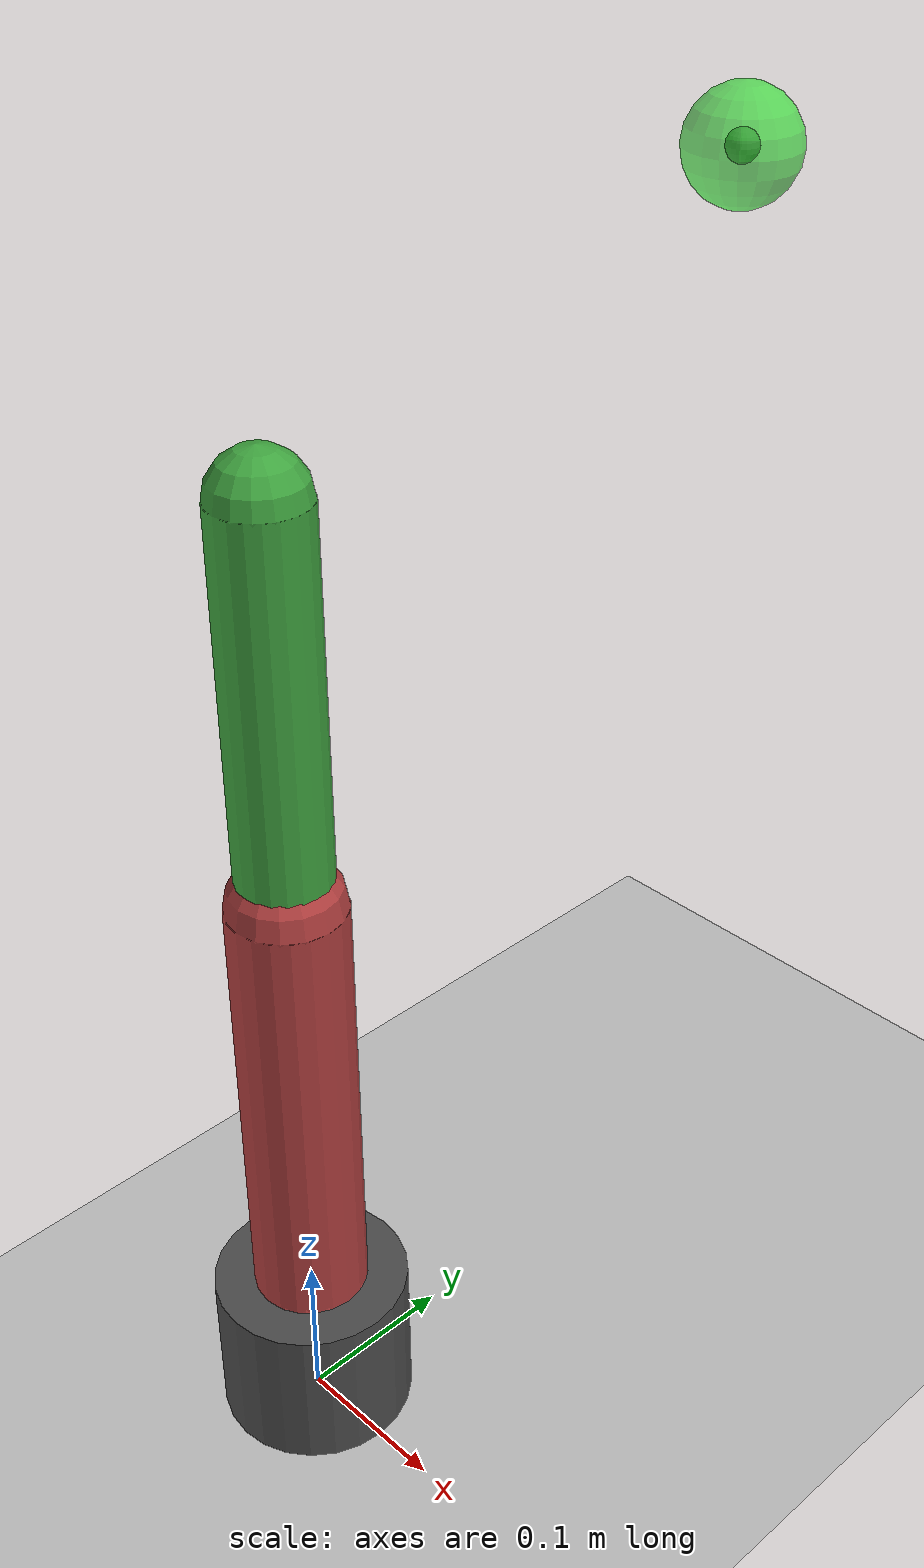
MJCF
<mujoco model="arm">

  <compiler angle="radian"/>
  <option timestep="0.002" gravity="0 0 -9.81" integrator="RK4"/>

  <worldbody>
    <light pos="0 0 4" dir="0 0 -1" diffuse="0.8 0.8 0.8"/>
    <light pos="2 2 2" dir="-1 -1 -1" diffuse="0.4 0.4 0.4"/>
    <geom name="floor" type="plane" size="2 2 0.1" rgba="0.75 0.75 0.75 1"/>

    <body name="base" pos="0 0 0">
      <inertial pos="0 0 0.05" mass="1.0" diaginertia="0.01 0.01 0.01"/>
      <geom type="cylinder" size="0.06 0.05" pos="0 0 0.05" rgba="0.3 0.3 0.3 1"/>
      <joint name="joint0" type="hinge" axis="0 0 1"
             range="-3.14159 3.14159" limited="true" damping="1.0" armature="0.1"/>

      <body name="link1" pos="0 0 0.1">
        <inertial pos="0 0 0.14" mass="0.8" diaginertia="0.008 0.008 0.002"/>
        <geom type="capsule" size="0.035" fromto="0 0 0 0 0 0.28" rgba="0.7 0.25 0.25 1"/>
        <joint name="joint1" type="hinge" axis="0 1 0"
               range="-1.8 1.8" limited="true" damping="1.0" armature="0.1"/>

        <body name="link2" pos="0 0 0.28">
          <inertial pos="0 0 0.12" mass="0.5" diaginertia="0.004 0.004 0.001"/>
          <geom type="capsule" size="0.028" fromto="0 0 0 0 0 0.24" rgba="0.25 0.65 0.25 1"/>
          <joint name="joint2" type="hinge" axis="0 1 0"
                 range="-2.4 2.4" limited="true" damping="1.0" armature="0.1"/>

          <body name="ee" pos="0 0 0.24">
            <inertial pos="0 0 0" mass="0.1" diaginertia="0.001 0.001 0.001"/>
            <geom type="sphere" size="0.022" rgba="0.9 0.1 0.1 1"/>
            <site name="ee_site" pos="0 0 0" size="0.015" rgba="1 1 0 1"/>
          </body>

        </body>
      </body>
    </body>

    <!-- Mocap target: moved by env each step, no collision -->
    <body name="target" pos="0 0.35 0.72" mocap="true">
      <geom type="sphere" size="0.035"
            rgba="0.1 0.9 0.1 0.6"
            contype="0" conaffinity="0"/>
      <site name="target_site" pos="0 0 0" size="0.01"/>
    </body>

  </worldbody>

  <actuator>
    <motor name="act0" joint="joint0" gear="40" ctrllimited="true" ctrlrange="-1 1"/>
    <motor name="act1" joint="joint1" gear="60" ctrllimited="true" ctrlrange="-1 1"/>
    <motor name="act2" joint="joint2" gear="40" ctrllimited="true" ctrlrange="-1 1"/>
  </actuator>

</mujoco>
